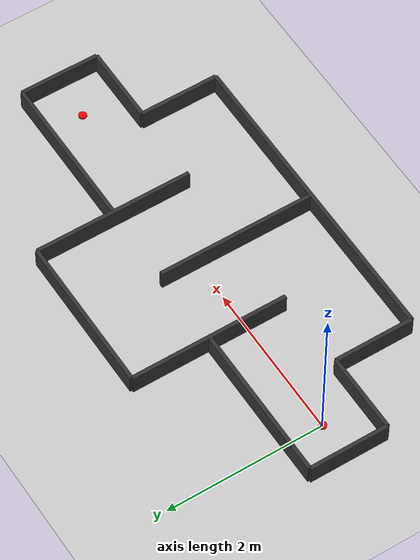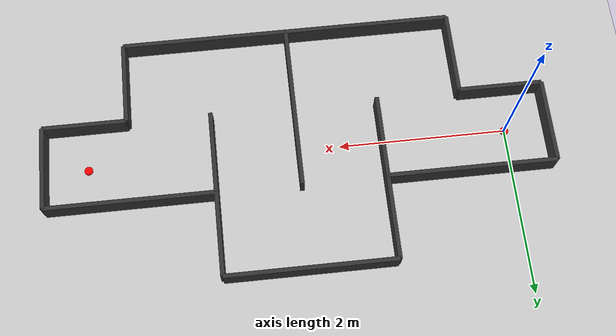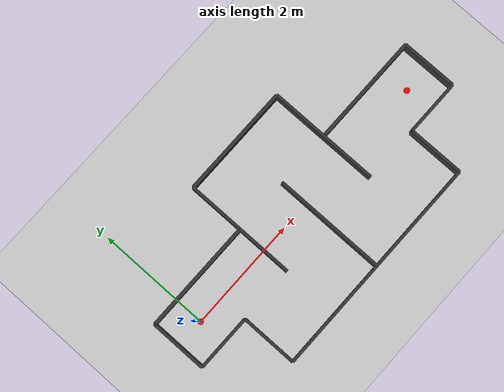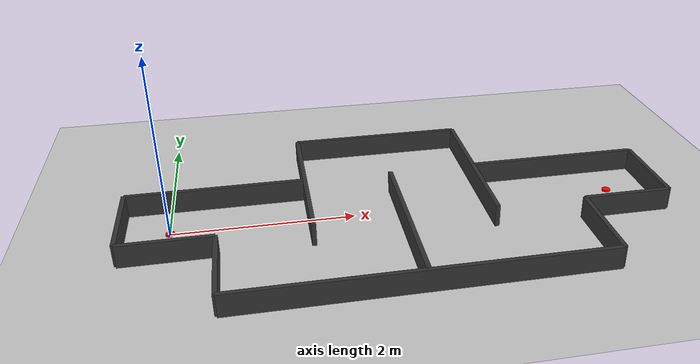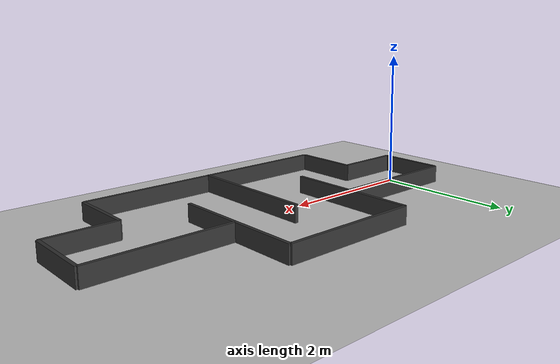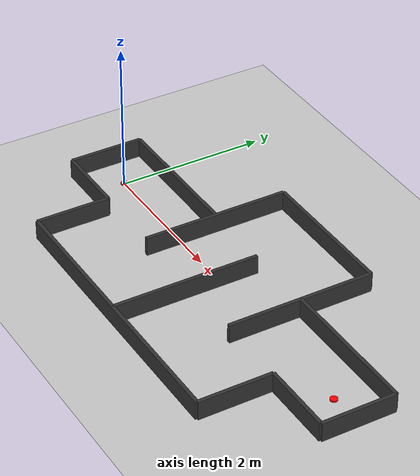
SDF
<?xml version="1.0" ?>
<sdf version="1.9">
  <world name="maze_world">
    <physics name="1ms" type="ignored">
      <max_step_size>0.001</max_step_size>
      <real_time_factor>1.0</real_time_factor>
    </physics>

    <plugin filename="gz-sim-physics-system"
            name="gz::sim::systems::Physics">
    </plugin>
    <plugin filename="gz-sim-user-commands-system"
            name="gz::sim::systems::UserCommands">
    </plugin>
    <plugin filename="gz-sim-scene-broadcaster-system"
            name="gz::sim::systems::SceneBroadcaster">
    </plugin>

    <light type="directional" name="sun">
      <cast_shadows>true</cast_shadows>
      <pose>0 0 10 0 0 0</pose>
      <diffuse>0.8 0.8 0.8 1</diffuse>
      <specular>0.2 0.2 0.2 1</specular>
      <attenuation>
        <range>1000</range>
        <constant>0.9</constant>
        <linear>0.01</linear>
        <quadratic>0.001</quadratic>
      </attenuation>
      <direction>-0.5 0.1 -0.9</direction>
    </light>

    <model name="ground_plane">
      <static>true</static>
      <link name="link">
        <collision name="collision">
          <geometry>
            <plane>
              <normal>0 0 1</normal>d
              <size>100 100</size>
            </plane>
          </geometry>
        </collision>
        <visual name="visual">
          <geometry>
            <plane>
              <normal>0 0 1</normal>
              <size>100 100</size>
            </plane>
          </geometry>
          <material>
            <ambient>0.8 0.8 0.8 1</ambient>
            <diffuse>0.8 0.8 0.8 1</diffuse>
            <specular>0.8 0.8 0.8 1</specular>
          </material>
        </visual>
      </link>
    </model>

    <model name="maze">
      <static>true</static>

      <!-- Constants -->
      <!-- Cell size: 1m (100cm) -->
      <!-- Wall height: 0.5m -->
      <!-- Wall thickness: 0.05m -->

      <link name="h1">
        <pose>-0.5 0 0 0 0 0</pose>
        <visual name="visual">
          <geometry>
            <box>
              <size>0.05 1 0.5</size>
            </box>
          </geometry>
          <material>
            <ambient>0.2 0.2 0.2 1</ambient>
            <diffuse>0.2 0.2 0.2 1</diffuse>
            <specular>0.2 0.2 0.2 1</specular>
          </material>
        </visual>
        <collision name="collision">
          <geometry>
            <box>
              <size>0.05 1 0.5</size>
            </box>
          </geometry>
        </collision>
      </link>

      <link name="h2">
        <pose>0.5 -1 0 0 0 0</pose>
        <visual name="visual">
          <geometry>
            <box>
              <size>0.05 1 0.5</size>
            </box>
          </geometry>
          <material>
            <ambient>0.2 0.2 0.2 1</ambient>
            <diffuse>0.2 0.2 0.2 1</diffuse>
            <specular>0.2 0.2 0.2 1</specular>
          </material>
        </visual>
        <collision name="collision">
          <geometry>
            <box>
              <size>0.05 1 0.5</size>
            </box>
          </geometry>
        </collision>
      </link>

      <link name="h3">
        <pose>1.5 0.5 0 0 0 0</pose>
        <visual name="visual">
          <geometry>
            <box>
              <size>0.05 2 0.5</size>
            </box>
          </geometry>
          <material>
            <ambient>0.2 0.2 0.2 1</ambient>
            <diffuse>0.2 0.2 0.2 1</diffuse>
            <specular>0.2 0.2 0.2 1</specular>
          </material>
        </visual>
        <collision name="collision">
          <geometry>
            <box>
              <size>0.05 2 0.5</size>
            </box>
          </geometry>
        </collision>
      </link>

      <link name="h4">
        <pose>2.5 -0.5 0 0 0 0</pose>
        <visual name="visual">
          <geometry>
            <box>
              <size>0.05 2 0.5</size>
            </box>
          </geometry>
          <material>
            <ambient>0.2 0.2 0.2 1</ambient>
            <diffuse>0.2 0.2 0.2 1</diffuse>
            <specular>0.2 0.2 0.2 1</specular>
          </material>
        </visual>
        <collision name="collision">
          <geometry>
            <box>
              <size>0.05 2 0.5</size>
            </box>
          </geometry>
        </collision>
      </link>

      <link name="h5">
        <pose>3.5 0.5 0 0 0 0</pose>
        <visual name="visual">
          <geometry>
            <box>
              <size>0.05 2 0.5</size>
            </box>
          </geometry>
          <material>
            <ambient>0.2 0.2 0.2 1</ambient>
            <diffuse>0.2 0.2 0.2 1</diffuse>
            <specular>0.2 0.2 0.2 1</specular>
          </material>
        </visual>
        <collision name="collision">
          <geometry>
            <box>
              <size>0.05 2 0.5</size>
            </box>
          </geometry>
        </collision>
      </link>

      <link name="h6">
        <pose>4.5 -1 0 0 0 0</pose>
        <visual name="visual">
          <geometry>
            <box>
              <size>0.05 1 0.5</size>
            </box>
          </geometry>
          <material>
            <ambient>0.2 0.2 0.2 1</ambient>
            <diffuse>0.2 0.2 0.2 1</diffuse>
            <specular>0.2 0.2 0.2 1</specular>
          </material>
        </visual>
        <collision name="collision">
          <geometry>
            <box>
              <size>0.05 1 0.5</size>
            </box>
          </geometry>
        </collision>
      </link>

      <link name="h7">
        <pose>5.5 0 0 0 0 0</pose>
        <visual name="visual">
          <geometry>
            <box>
              <size>0.05 1 0.5</size>
            </box>
          </geometry>
          <material>
            <ambient>0.2 0.2 0.2 1</ambient>
            <diffuse>0.2 0.2 0.2 1</diffuse>
            <specular>0.2 0.2 0.2 1</specular>
          </material>
        </visual>
        <collision name="collision">
          <geometry>
            <box>
              <size>0.05 1 0.5</size>
            </box>
          </geometry>
        </collision>
      </link>

      <link name="v1">
        <pose>2.5 1.5 0 0 0 0</pose>
        <visual name="visual">
          <geometry>
            <box>
              <size>2 0.05 0.5</size>
            </box>
          </geometry>
          <material>
            <ambient>0.2 0.2 0.2 1</ambient>
            <diffuse>0.2 0.2 0.2 1</diffuse>
            <specular>0.2 0.2 0.2 1</specular>
          </material>
        </visual>
        <collision name="collision">
          <geometry>
            <box>
              <size>2 0.05 0.5</size>
            </box>
          </geometry>
        </collision>
      </link>

      <link name="v2_1">
        <pose>0.5 0.5 0 0 0 0</pose>
        <visual name="visual">
          <geometry>
            <box>
              <size>2 0.05 0.5</size>
            </box>
          </geometry>
          <material>
            <ambient>0.2 0.2 0.2 1</ambient>
            <diffuse>0.2 0.2 0.2 1</diffuse>
            <specular>0.2 0.2 0.2 1</specular>
          </material>
        </visual>
        <collision name="collision">
          <geometry>
            <box>
              <size>2 0.05 0.5</size>
            </box>
          </geometry>
        </collision>
      </link>

      <link name="v2_2">
        <pose>4.5 0.5 0 0 0 0</pose>
        <visual name="visual">
          <geometry>
            <box>
              <size>2 0.05 0.5</size>
            </box>
          </geometry>
          <material>
            <ambient>0.2 0.2 0.2 1</ambient>
            <diffuse>0.2 0.2 0.2 1</diffuse>
            <specular>0.2 0.2 0.2 1</specular>
          </material>
        </visual>
        <collision name="collision">
          <geometry>
            <box>
              <size>2 0.05 0.5</size>
            </box>
          </geometry>
        </collision>
      </link>

      <link name="v3_1">
        <pose>0 -0.5 0 0 0 0</pose>
        <visual name="visual">
          <geometry>
            <box>
              <size>1 0.05 0.5</size>
            </box>
          </geometry>
          <material>
            <ambient>0.2 0.2 0.2 1</ambient>
            <diffuse>0.2 0.2 0.2 1</diffuse>
            <specular>0.2 0.2 0.2 1</specular>
          </material>
        </visual>
        <collision name="collision">
          <geometry>
            <box>
              <size>1 0.05 0.5</size>
            </box>
          </geometry>
        </collision>
      </link>

      <link name="v3_2">
        <pose>5 -0.5 0 0 0 0</pose>
        <visual name="visual">
          <geometry>
            <box>
              <size>1 0.05 0.5</size>
            </box>
          </geometry>
          <material>
            <ambient>0.2 0.2 0.2 1</ambient>
            <diffuse>0.2 0.2 0.2 1</diffuse>
            <specular>0.2 0.2 0.2 1</specular>
          </material>
        </visual>
        <collision name="collision">
          <geometry>
            <box>
              <size>1 0.05 0.5</size>
            </box>
          </geometry>
        </collision>
      </link>

      <link name="v4">
        <pose>2.5 -1.5 0 0 0 0</pose>
        <visual name="visual">
          <geometry>
            <box>
              <size>4 0.05 0.5</size>
            </box>
          </geometry>
          <material>
            <ambient>0.2 0.2 0.2 1</ambient>
            <diffuse>0.2 0.2 0.2 1</diffuse>
            <specular>0.2 0.2 0.2 1</specular>
          </material>
        </visual>
        <collision name="collision">
          <geometry>
            <box>
              <size>4 0.05 0.5</size>
            </box>
          </geometry>
        </collision>
      </link>

      <!-- Start Marker -->
      <link name="start_marker">
        <pose>0 0 0.01 0 0 0</pose>
        <visual name="visual">
          <geometry>
            <cylinder>
              <radius>0.05</radius>
              <length>0.02</length>
            </cylinder>
          </geometry>
          <material>
            <ambient>1 0 0 1</ambient>
            <diffuse>1 0 0 1</diffuse>
            <specular>1 0 0 1</specular>
          </material>
        </visual>
      </link>

      <!-- End Marker -->
      <link name="end_marker">
        <pose>5 0 0.01 0 0 0</pose>
        <visual name="visual">
          <geometry>
            <cylinder>
              <radius>0.05</radius>
              <length>0.02</length>
            </cylinder>
          </geometry>
          <material>
            <ambient>1 0 0 1</ambient>
            <diffuse>1 0 0 1</diffuse>
            <specular>1 0 0 1</specular>
          </material>
        </visual>
      </link>

    </model>
  </world>
</sdf>
